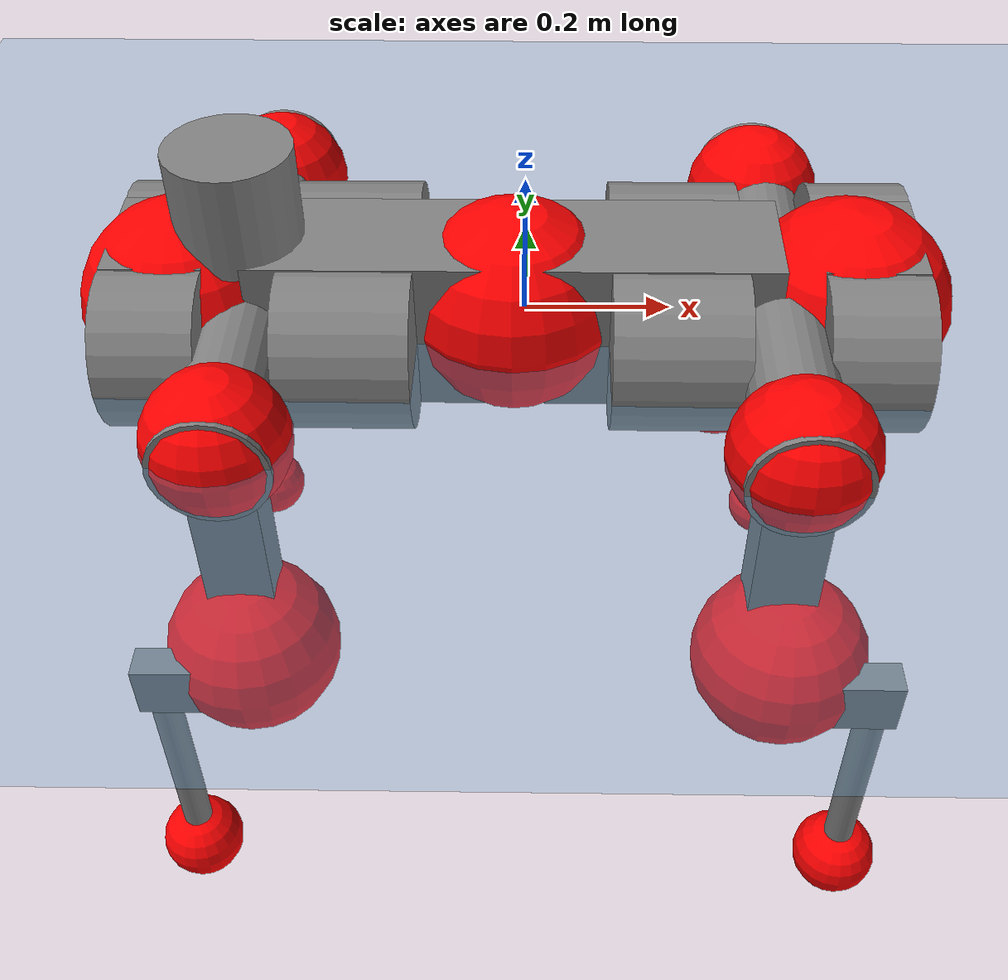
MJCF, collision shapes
<mujoco model="anymal_c">
  <compiler angle="radian" assetdir="assets" balanceinertia="true" inertiafromgeom="false"/>

  <option timestep="0.005" density="1.2" viscosity="2e-05"/>

  <size nkey="1"/>

  <visual>
    <quality shadowsize="8192"/>
    <map shadowclip="0.5"/>
  </visual>

  <default>
    <default class="/">
      <material specular="0" shininess="0.25"/>
      <geom contype="0" conaffinity="0" group="1" solref="-1000 -80"/>
      <site size="0.01 0.005 0.005" group="5"/>
      <general forcelimited="true" forcerange="-80 80" biastype="affine" gainprm="80" biasprm="0 -80 -2"/>
      <default class="anymal_c">
        <joint armature="0.01" damping="0.01" frictionloss="0.1"/>
        <default class="visual">
          <geom type="mesh" group="2"/>
          <default class="visual_zflip"/>
        </default>
        <default class="collision">
          <geom type="cylinder" group="3"/>
          <default class="foot">
            <geom size="0.03 0 0" type="sphere" condim="6" priority="1" friction="0.8 0.02 0.01" solimp="0.015 1 0.03"/>
          </default>
        </default>
      </default>
      <default class="reward_collision_sphere">
        <geom group="5" rgba="1 0 0 1"/>
      </default>
    </default>
  </default>

  <asset>
    <texture type="skybox" colorspace="auto" name="//unnamed_texture_0" builtin="gradient" rgb1="0.95 0.95 0.95" rgb2="0.95 0.95 0.95" width="100" height="600"/>
    <texture type="2d" colorspace="auto" name="texplane" builtin="checker" rgb1="0.345 0.575 0.748" rgb2="0.345 0.575 0.748" markrgb="1 1 1" width="512" height="512"/>
    <texture type="2d" colorspace="linear" name="base" file="base.png"/>
    <texture type="2d" colorspace="linear" name="top_shell" file="top_shell.png"/>
    <texture type="2d" colorspace="linear" name="bottom_shell" file="bottom_shell.png"/>
    <texture type="2d" colorspace="linear" name="remote" file="remote.png"/>
    <texture type="2d" colorspace="linear" name="hatch" file="hatch.png"/>
    <texture type="2d" colorspace="linear" name="handle" file="handle.png"/>
    <texture type="2d" colorspace="linear" name="face" file="face.png"/>
    <texture type="2d" colorspace="linear" name="battery" file="battery.png"/>
    <texture type="2d" colorspace="linear" name="lidar_cage" file="lidar_cage.png"/>
    <texture type="2d" colorspace="linear" name="depth_camera" file="depth_camera.png"/>
    <texture type="2d" colorspace="linear" name="wide_angle_camera" file="wide_angle_camera.png"/>
    <texture type="2d" colorspace="linear" name="lidar" file="lidar.png"/>
    <texture type="2d" colorspace="linear" name="drive" file="drive.png"/>
    <texture type="2d" colorspace="linear" name="hip_l" file="hip_l.png"/>
    <texture type="2d" colorspace="linear" name="shank_l" file="shank_l.png"/>
    <texture type="2d" colorspace="linear" name="foot" file="foot.png"/>
    <texture type="2d" colorspace="linear" name="thigh" file="thigh.png"/>
    <texture type="2d" colorspace="linear" name="shank_r" file="shank_r.png"/>
    <texture type="2d" colorspace="linear" name="hip_r" file="hip_r.png"/>
    <material name="MatPlane" class="/" texture="texplane" texuniform="true" texrepeat="2 2" specular="0.9" shininess="0.5"/>
    <material name="black_plastic" class="/" rgba="0.007 0.007 0.007 1"/>
    <material name="green" class="/" rgba="0.052 0.178 0.033 1"/>
    <material name="red" class="/" rgba="0.178 0.006 0.005 1"/>
    <material name="yellow" class="/" rgba="0.178 0.119 0.006 1"/>
    <material name="lwl" class="/" rgba="0.8 0.8 0.8 1"/>
    <material name="base" class="/" texture="base"/>
    <material name="top_shell" class="/" texture="top_shell"/>
    <material name="bottom_shell" class="/" texture="bottom_shell"/>
    <material name="hip_l" class="/" texture="hip_l"/>
    <material name="thigh" class="/" texture="thigh"/>
    <material name="shank_l" class="/" texture="shank_l"/>
    <material name="foot" class="/" texture="foot"/>
    <material name="hip_r" class="/" texture="hip_r"/>
    <material name="shank" class="/" texture="shank_r"/>
    <material name="hatch" class="/" texture="hatch"/>
    <material name="remote" class="/" texture="remote"/>
    <material name="handle" class="/" texture="handle"/>
    <material name="face" class="/" texture="face"/>
    <material name="depth_camera" class="/" texture="depth_camera"/>
    <material name="wide_angle_camera" class="/" texture="wide_angle_camera"/>
    <material name="battery" class="/" texture="battery"/>
    <material name="lidar_cage" class="/" texture="lidar_cage"/>
    <material name="lidar" class="/" texture="lidar"/>
    <material name="drive" class="/" texture="drive"/>
    <mesh name="base_0" class="/" file="base_0.obj"/>
    <mesh name="base_1" class="/" file="base_1.obj"/>
    <mesh name="base_2" class="/" file="base_2.obj"/>
    <mesh name="base_3" class="/" file="base_3.obj"/>
    <mesh name="base_4" class="/" file="base_4.obj"/>
    <mesh name="base_5" class="/" file="base_5.obj"/>
    <mesh name="top_shell" class="/" file="top_shell.obj"/>
    <mesh name="bottom_shell" class="/" file="bottom_shell.obj"/>
    <mesh name="remote" class="/" file="remote.obj"/>
    <mesh name="handle" class="/" file="handle.obj"/>
    <mesh name="face" class="/" file="face.obj"/>
    <mesh name="wide_angle_camera" class="/" file="wide_angle_camera.obj"/>
    <mesh name="depth_camera" class="/" file="depth_camera.obj"/>
    <mesh name="battery" class="/" file="battery.obj"/>
    <mesh name="lidar_cage" class="/" file="lidar_cage.obj"/>
    <mesh name="lidar" class="/" file="lidar.obj"/>
    <mesh name="drive" class="/" file="drive.obj"/>
    <mesh name="hip_l" class="/" file="hip_l.obj"/>
    <mesh name="thigh" class="/" file="thigh.obj"/>
    <mesh name="shank_l" class="/" file="shank_l.obj"/>
    <mesh name="foot" class="/" file="foot.obj"/>
    <mesh name="hip_r" class="/" file="hip_r.obj"/>
    <mesh name="hatch" class="/" file="hatch.obj"/>
    <mesh name="shank_r" class="/" file="shank_r.obj"/>
  </asset>

  <worldbody>
    <geom name="floor" class="/" size="100 100 0.125" type="plane" group="0" material="MatPlane"/>
    <light name="toplight_shadow" class="/" pos="0 0 5" dir="0.0990148 0.0990148 -0.990148" type="directional" ambient="0.04 0.04 0.04" diffuse="0.55 0.55 0.55" specular="0.12 0.12 0.12"/>
    <light name="toplight_fill" class="/" pos="0 0 5" dir="0.0990148 0.0990148 -0.990148" type="directional" castshadow="false" ambient="0.04 0.04 0.04" diffuse="0.3 0.3 0.3" specular="0.08 0.08 0.08"/>
    <body name="trunk" childclass="anymal_c" pos="-0.0144599 0.000401598 0.00678331" quat="0.999979 0.000718257 -0.00441968 -0.00471576">
      <inertial pos="0.0162549 -0.00647865 0.0643592" quat="0.508457 0.492186 0.502823 0.496381" mass="38.9633" diaginertia="0.60898 3.46032 0.556828"/>
      <joint name="//unnamed_joint_0" type="free" armature="0" damping="0" frictionloss="0"/>
      <geom name="//unnamed_geom_1" class="visual" material="green" mesh="base_0"/>
      <geom name="//unnamed_geom_2" class="visual" material="yellow" mesh="base_1"/>
      <geom name="//unnamed_geom_3" class="visual" material="red" mesh="base_2"/>
      <geom name="//unnamed_geom_4" class="visual" material="black_plastic" mesh="base_3"/>
      <geom name="//unnamed_geom_5" class="visual" material="lwl" mesh="base_4"/>
      <geom name="//unnamed_geom_6" class="visual" material="base" mesh="base_5"/>
      <geom name="trunk_1" class="collision" size="0.35619 0.0859768 0.110542" type="box"/>
      <geom name="trunk_2" class="collision" size="0.110542 0.0890474" pos="0.218642 0.100563 0" quat="0.707107 0 0.707107 0"/>
      <geom name="trunk_3" class="collision" size="0.110542 0.0890474" pos="-0.218642 0.100563 0" quat="0.707107 0 0.707107 0"/>
      <geom name="trunk_4" class="collision" size="0.110542 0.0890474" pos="0.218642 -0.100563 0" quat="0.707107 0 0.707107 0"/>
      <geom name="trunk_5" class="collision" size="0.110542 0.0890474" pos="-0.218642 -0.100563 0" quat="0.707107 0 0.707107 0"/>
      <geom name="//unnamed_geom_12" class="visual" material="top_shell" mesh="top_shell"/>
      <geom name="//unnamed_geom_13" class="visual" material="bottom_shell" mesh="bottom_shell"/>
      <geom name="//unnamed_geom_14" class="visual" material="remote" mesh="remote"/>
      <geom name="//unnamed_geom_15" class="visual" material="handle" mesh="handle"/>
      <geom name="//unnamed_geom_16" class="visual" pos="0.416677 0 0" quat="1 0 0 0" material="face" mesh="face"/>
      <geom name="trunk_6" class="collision" size="0.0675532 0.0859768 0.110542" pos="0.471966 0 0" type="box"/>
      <geom name="//unnamed_geom_18" class="collision" size="0.110542 0.0675532" pos="0.471966 0.100563 0" quat="0.707107 0 0.707107 0"/>
      <geom name="//unnamed_geom_19" class="collision" size="0.110542 0.0675532" pos="0.471966 -0.100563 0" quat="0.707107 0 0.707107 0"/>
      <geom name="//unnamed_geom_20" class="visual" pos="0.464085 0 -0.038097" quat="0.965926 0 0.258819 0" material="depth_camera" mesh="depth_camera"/>
      <geom name="//unnamed_geom_21" class="visual" pos="0.515695 0 0.0186055" material="wide_angle_camera" mesh="wide_angle_camera"/>
      <geom name="//unnamed_geom_22" class="visual_zflip" pos="-0.416677 0 0" quat="0 0 0 1" material="face" mesh="face"/>
      <geom name="trunk_7" class="collision" size="0.0675532 0.0859768 0.110542" pos="-0.471966 0 0" quat="0 0 0 1" type="box"/>
      <geom name="//unnamed_geom_24" class="collision" size="0.110542 0.0675532" pos="-0.471966 -0.100563 0" quat="0 -0.707107 0 0.707107"/>
      <geom name="//unnamed_geom_25" class="collision" size="0.110542 0.0675532" pos="-0.471966 0.100563 0" quat="0 -0.707107 0 0.707107"/>
      <geom name="//unnamed_geom_26" class="visual" pos="-0.464085 0 -0.038097" quat="0 -0.258819 0 0.965926" material="depth_camera" mesh="depth_camera"/>
      <geom name="//unnamed_geom_27" class="visual_zflip" pos="-0.515695 0 0.0186055" quat="0 0 0 1" material="wide_angle_camera" mesh="wide_angle_camera"/>
      <geom name="//unnamed_geom_28" class="visual" material="battery" mesh="battery"/>
      <geom name="//unnamed_geom_29" class="visual" pos="0 0.115514 0.0342991" quat="0.683013 -0.183013 0.183013 0.683013" material="depth_camera" mesh="depth_camera"/>
      <geom name="//unnamed_geom_30" class="visual" pos="0 -0.115514 0.0342991" quat="0.683013 0.183013 0.183013 -0.683013" material="depth_camera" mesh="depth_camera"/>
      <geom name="//unnamed_geom_31" class="visual" pos="-0.365912 0 0.0913496" quat="1 0 0 0" material="lidar_cage" mesh="lidar_cage"/>
      <geom name="trunk_8" class="collision" size="0.0859768 0.0736944" pos="-0.365912 0 0.165921"/>
      <geom name="//unnamed_geom_33" class="visual" pos="-0.365912 0.000169471 0.176733" quat="0.707107 0 0 -0.707107" material="lidar" mesh="lidar"/>
      <geom name="//unnamed_geom_34" class="visual" pos="0.301475 0.149339 3.34245e-09" quat="0.258819 0.965926 0 0" material="drive" mesh="drive"/>
      <geom name="//unnamed_geom_35" class="visual" pos="0.301475 -0.149339 -3.34245e-09" quat="0.258819 -0.965926 0 0" material="drive" mesh="drive"/>
      <geom name="//unnamed_geom_36" class="visual" pos="-0.301475 0.149339 -3.34245e-09" quat="0 0 0.965926 -0.258819" material="drive" mesh="drive"/>
      <geom name="//unnamed_geom_37" class="visual" pos="-0.301475 -0.149339 3.34245e-09" quat="0 0 -0.965926 -0.258819" material="drive" mesh="drive"/>
      <geom name="//unnamed_geom_38" class="visual" pos="0.116609 0 0.0907281" quat="1 0 0 0" material="hatch" mesh="hatch"/>
      <geom name="//unnamed_geom_39" class="reward_collision_sphere" size="0.147389"/>
      <geom name="//unnamed_geom_40" class="reward_collision_sphere" size="0.147389" pos="0.452364 0 0"/>
      <geom name="//unnamed_geom_41" class="reward_collision_sphere" size="0.147389" pos="-0.452364 0 0"/>
      <site name="imu" pos="0.253339 -0.026505 -0.00528399" size="0.0122824"/>
      <camera name="track" pos="0 -2.87323 0" quat="0.707107 0.707107 0 0" mode="trackcom"/>
      <camera name="ego_camera" pos="0.452364 0 -0.049714" quat="-0.5 -0.5 0.5 0.5"/>
      <body name="LF_HIP" pos="0.302467 0.153587 -0.0060294" quat="0.257394 0.966302 -0.00153591 -0.00249334">
        <inertial pos="0.053873 -0.0119606 -0.00865598" quat="-0.123734 0.711428 -0.136802 0.678119" mass="5.3716" diaginertia="0.00472732 0.0262667 0.00970833"/>
        <joint name="LF_HAA" pos="0 0 0" axis="0.997474 -0.0176394 0.0688024" stiffness="0.0269983" range="-0.999243 0.51425" armature="0.013268" damping="0" frictionloss="0.130186"/>
        <geom name="//unnamed_geom_42" class="visual" pos="0 0.000196621 -3.22949e-05" quat="0.258819 -0.965926 0 0" material="hip_l" mesh="hip_l"/>
        <geom name="//unnamed_geom_43" class="visual" pos="0.0602146 -0.0785736 -0.0439313" quat="0.183013 -0.683013 0.683013 0.183013" material="drive" mesh="drive"/>
        <geom name="//unnamed_geom_44" class="collision" size="0.061412 0.0859768" pos="0.0602146 -0.0171816 -0.00858189" quat="-0.353553 -0.612372 0.612372 -0.353553"/>
        <body name="LF_THIGH" pos="0.0531023 -0.105282 -0.0599586" quat="0.182576 -0.680012 0.686929 0.179937">
          <inertial pos="0.0212003 0.00892174 -0.292533" quat="0.993075 -0.00432012 -0.0818783 0.0841382" mass="6.41374" diaginertia="0.0318566 0.204543 0.011362"/>
          <joint name="LF_HFE" pos="0 0 0" axis="0.999693 0.0233873 -0.0081819" stiffness="0.07352" range="-3.26981 3.1244" armature="0.0162147" damping="0.0147145" frictionloss="0.154113"/>
          <geom name="//unnamed_geom_45" class="visual" pos="-0.00858242 -1.35239e-05 0" quat="0.707107 0 0 -0.707107" material="thigh" mesh="thigh"/>
          <geom name="//unnamed_geom_46" class="collision" size="0.0798356 0.0491296" pos="0.0402101 0 0" quat="0.5 0.5 -0.5 -0.5"/>
          <geom name="//unnamed_geom_47" class="collision" size="0.046059 0.0368472 0.173567" pos="0.0301576 0 -0.175632" quat="0.707107 0 0 -0.707107" type="box"/>
          <geom name="//unnamed_geom_48" class="visual" pos="0.100827 0 -0.354213" quat="1 0 0 0" material="drive" mesh="drive"/>
          <geom name="//unnamed_geom_49" class="collision" size="0.061412 0.0859768" pos="0.0304592 0 -0.354213" quat="0.707107 0 0.707107 0"/>
          <geom name="//unnamed_geom_50" class="reward_collision_sphere" size="0.0982592" pos="0.0251313 0 0"/>
          <body name="LF_SHANK" pos="0.0995536 0.0129534 -0.355979" quat="0.999991 -0.00279528 0.00109124 -0.00311637">
            <inertial pos="0.0166872 -0.0892319 -0.109475" quat="0.994276 -0.104647 -0.020131 -0.00769937" mass="1.0503" diaginertia="0.0093778 0.0409529 0.00255607"/>
            <joint name="LF_KFE" pos="0 0 0" axis="0.999674 0.00956151 -0.0236708" range="-2.88344 3.1375" armature="0.00816195" damping="0.0675534" frictionloss="0.0771692"/>
            <geom name="//unnamed_geom_51" class="visual" pos="-0.00279854 -0.014922 0" quat="0.707107 0 0 -0.707107" material="shank_l" mesh="shank_l"/>
            <geom name="LF_kfe_act" class="collision" size="0.0736944 0.0245648" pos="0.0201051 0 0" quat="0.5 0.5 -0.5 -0.5"/>
            <geom name="//unnamed_geom_53" class="collision" size="0.0706226 0.0414531 0.0233366" pos="0.0201051 -0.0826039 0" quat="0.5 0.5 -0.5 -0.5" type="box"/>
            <geom name="//unnamed_geom_54" class="visual" pos="0.0131192 -0.131159 -0.420046" quat="0.382683 0 0 -0.92388" material="foot" mesh="foot"/>
            <geom name="LF_calf" class="collision" size="0.0214942 0.173491" pos="0.0131185 -0.12635 -0.210023" quat="0.707107 0 0 -0.707107"/>
            <geom name="LF_foot" class="foot" size="0.0252745" pos="0.0131185 -0.12635 -0.392082" quat="0.707107 0 0 -0.707107"/>
            <geom name="//unnamed_geom_57" class="reward_collision_sphere" size="0.122824" pos="-0.0502626 0 0"/>
            <geom name="//unnamed_geom_58" class="reward_collision_sphere" size="0.061412" pos="0.0131185 -0.12635 -0.392082"/>
            <site name="LF_foot" class="foot" pos="0.0131185 -0.12635 -0.392082" quat="0.707107 0 0 -0.707107" size="0.0122824"/>
          </body>
        </body>
      </body>
      <body name="RF_HIP" pos="0.299949 -0.153728 0.0131092" quat="0.257636 -0.966228 -0.00135136 0.00495036">
        <inertial pos="0.0497044 0.0341271 -0.0116969" quat="0.112297 0.685418 0.0764418 0.715365" mass="5.20518" diaginertia="0.00745625 0.0332389 0.0119199"/>
        <joint name="RF_HAA" pos="0 0 0" axis="0.999286 -0.00352802 -0.0376282" stiffness="0.0174653" range="-0.589436 0.736761" armature="0.00986489" damping="0.00518854" frictionloss="0.19416"/>
        <geom name="//unnamed_geom_59" class="visual" pos="0 -0.00019662 -3.22948e-05" quat="0.258819 0.965926 0 0" material="hip_r" mesh="hip_r"/>
        <geom name="//unnamed_geom_60" class="visual" pos="0.0602147 0.0785736 -0.0439313" quat="0.183013 0.683013 0.683013 -0.183013" material="drive" mesh="drive"/>
        <geom name="//unnamed_geom_61" class="collision" size="0.061412 0.0859768" pos="0.0602146 0.0171816 -0.00858189" quat="-0.353553 0.612372 0.612372 0.353553"/>
        <body name="RF_THIGH" pos="0.061757 0.118535 -0.0535299" quat="0.182815 0.682918 0.683151 -0.183047">
          <inertial pos="0.0231459 0.0104699 -0.30447" quat="0.988232 -0.0385117 -0.107535 0.101736" mass="5.51609" diaginertia="0.0340919 0.21062 0.0115679"/>
          <joint name="RF_HFE" pos="0 0 0" axis="0.999994 0.00329828 -0.000502299" stiffness="0.0401011" range="-3.11106 2.92014" armature="0.0119732" damping="0.0241349" frictionloss="0.0836613"/>
          <geom name="//unnamed_geom_62" class="visual" pos="-0.00858242 -1.35239e-05 0" quat="0.707107 0 0 -0.707107" material="thigh" mesh="thigh"/>
          <geom name="//unnamed_geom_63" class="collision" size="0.0798356 0.0491296" pos="0.0402101 0 0" quat="0.5 0.5 0.5 0.5"/>
          <geom name="//unnamed_geom_64" class="collision" size="0.046059 0.0368472 0.173567" pos="0.0301576 0 -0.175632" quat="0.707107 0 0 0.707107" type="box"/>
          <geom name="//unnamed_geom_65" class="visual" pos="0.100827 0 -0.354213" quat="1 0 0 0" material="drive" mesh="drive"/>
          <geom name="//unnamed_geom_66" class="collision" size="0.061412 0.0859768" pos="0.0304592 0 -0.354213" quat="0.707107 0 0.707107 0"/>
          <geom name="//unnamed_geom_67" class="reward_collision_sphere" size="0.0982592" pos="0.0251313 0 0"/>
          <body name="RF_SHANK" pos="0.102493 0.0109076 -0.34944" quat="1 -0.000113556 0.000226966 5.50204e-05">
            <inertial pos="0.00434042 0.08777 -0.0993754" quat="0.99314 0.110289 -0.0204646 -0.033017" mass="1.09524" diaginertia="0.0103798 0.0571774 0.003754"/>
            <joint name="RF_KFE" pos="0 0 0" axis="0.997736 0.0086109 -0.0667" stiffness="0.0590359" range="-3.13909 2.94609" armature="0.0154056" damping="0" frictionloss="0.158659"/>
            <geom name="//unnamed_geom_68" class="visual" pos="-0.00279852 0.0149219 0" quat="0.707107 0 0 0.707107" material="shank" mesh="shank_r"/>
            <geom name="RF_kfe_act" class="collision" size="0.0736944 0.0245648" pos="0.0201051 0 0" quat="0.5 0.5 0.5 0.5"/>
            <geom name="//unnamed_geom_70" class="collision" size="0.0706226 0.0414531 0.0233366" pos="0.0201051 0.0826039 0" quat="0.5 0.5 0.5 0.5" type="box"/>
            <geom name="//unnamed_geom_71" class="visual" pos="0.0131179 0.131159 -0.420046" quat="0.382683 0 0 0.92388" material="foot" mesh="foot"/>
            <geom name="RF_calf" class="collision" size="0.0214942 0.173491" pos="0.0131185 0.12635 -0.210023" quat="0.707107 0 0 0.707107"/>
            <geom name="RF_foot" class="foot" size="0.0426351" pos="0.0131185 0.12635 -0.392082" quat="0.707107 0 0 0.707107"/>
            <geom name="//unnamed_geom_74" class="reward_collision_sphere" size="0.122824" pos="-0.0502626 0 0"/>
            <geom name="//unnamed_geom_75" class="reward_collision_sphere" size="0.061412" pos="0.0131185 0.12635 -0.392082"/>
            <site name="RF_foot" class="foot" pos="0.0131185 0.12635 -0.392082" quat="0.707107 0 0 0.707107" size="0.0122824"/>
          </body>
        </body>
      </body>
      <body name="LH_HIP" pos="-0.302216 0.150509 0.0101583" quat="-5.27681e-05 0.00032561 0.965954 -0.258714">
        <inertial pos="0.0515668 0.00845818 -0.000221857" quat="0.0811753 0.650466 0.158847 0.73829" mass="4.13676" diaginertia="0.00573335 0.028762 0.00790575"/>
        <joint name="LH_HAA" pos="0 0 0" axis="0.999994 0.000848742 -0.00327722" range="-0.456992 0.885525" armature="0.0185943" damping="0.0259472" frictionloss="0.0470931"/>
        <geom name="//unnamed_geom_76" class="visual" pos="0 -0.00019662 -3.22948e-05" quat="-0.258819 -0.965926 0 0" material="hip_r" mesh="hip_r"/>
        <geom name="//unnamed_geom_77" class="visual" pos="0.0602147 0.0785736 -0.0439313" quat="0.183013 0.683013 0.683013 -0.183013" material="drive" mesh="drive"/>
        <geom name="//unnamed_geom_78" class="collision" size="0.061412 0.0859768" pos="0.0602146 0.0171816 -0.00858189" quat="-0.353553 0.612372 0.612372 0.353553"/>
        <body name="LH_THIGH" pos="0.0607725 0.116226 -0.0643596" quat="0.182697 0.682587 0.683542 -0.182942">
          <inertial pos="0.0316892 -0.0011427 -0.30762" quat="0.992497 -0.0181904 -0.0633489 0.102988" mass="4.48865" diaginertia="0.0295742 0.169039 0.0104618"/>
          <joint name="LH_HFE" pos="0 0 0" axis="0.999115 -0.00248883 -0.0419973" range="-3.14457 3.13215" armature="0.00640501" damping="0.0497781" frictionloss="0.124041"/>
          <geom name="//unnamed_geom_79" class="visual" pos="-0.00858242 -1.35239e-05 0" quat="0.707107 0 0 -0.707107" material="thigh" mesh="thigh"/>
          <geom name="//unnamed_geom_80" class="collision" size="0.0798356 0.0491296" pos="0.0402101 0 0" quat="0.5 0.5 -0.5 -0.5"/>
          <geom name="//unnamed_geom_81" class="collision" size="0.046059 0.0368472 0.173567" pos="0.0301576 0 -0.175632" quat="0.707107 0 0 -0.707107" type="box"/>
          <geom name="//unnamed_geom_82" class="visual" pos="0.100827 0 -0.354213" quat="1 0 0 0" material="drive" mesh="drive"/>
          <geom name="//unnamed_geom_83" class="collision" size="0.061412 0.0859768" pos="0.0304592 0 -0.354213" quat="0.707107 0 0.707107 0"/>
          <geom name="//unnamed_geom_84" class="reward_collision_sphere" size="0.0982592" pos="0.0251313 0 0"/>
          <body name="LH_SHANK" pos="0.10204 -0.000250377 -0.341155" quat="0.999999 -0.000456534 0.00129451 -0.000446905">
            <inertial pos="0.010624 0.0739714 -0.100633" quat="0.989041 0.137171 -0.0153013 0.0524142" mass="1.02836" diaginertia="0.01074 0.052997 0.0036688"/>
            <joint name="LH_KFE" pos="0 0 0" axis="0.999935 -0.0114407 -0.000126141" stiffness="0.0724952" range="-3.16921 3.01073" armature="0.00783272" damping="0.0498732" frictionloss="0.0385"/>
            <geom name="//unnamed_geom_85" class="visual" pos="-0.00279852 0.0149219 0" quat="-0.707107 0 0 -0.707107" material="shank" mesh="shank_r"/>
            <geom name="LH_kfe_act" class="collision" size="0.0736944 0.0245648" pos="0.0201051 0 0" quat="0.5 0.5 -0.5 -0.5"/>
            <geom name="//unnamed_geom_87" class="collision" size="0.0706226 0.0414531 0.0233366" pos="0.0201051 0.0826039 0" quat="0.5 0.5 -0.5 -0.5" type="box"/>
            <geom name="//unnamed_geom_88" class="visual" pos="0.0131179 0.131159 -0.420046" quat="-0.382683 0 0 -0.92388" material="foot" mesh="foot"/>
            <geom name="LH_calf" class="collision" size="0.0214942 0.173491" pos="0.0131185 0.12635 -0.210023" quat="0.707107 0 0 -0.707107"/>
            <geom name="LH_foot" class="foot" size="0.0466741" pos="0.0131185 0.12635 -0.392082" quat="0.707107 0 0 -0.707107"/>
            <geom name="//unnamed_geom_91" class="reward_collision_sphere" size="0.122824" pos="-0.0502626 0 0"/>
            <geom name="//unnamed_geom_92" class="reward_collision_sphere" size="0.061412" pos="0.0131185 0.12635 -0.392082"/>
            <site name="LH_foot" class="foot" pos="0.0131185 0.12635 -0.392082" quat="0.707107 0 0 -0.707107" size="0.0122824"/>
          </body>
        </body>
      </body>
      <body name="RH_HIP" pos="-0.306525 -0.142077 0.00257676" quat="-0.00123069 0.00444094 -0.967178 -0.254059">
        <inertial pos="0.0431399 -0.0321008 0.00340277" quat="-0.0949375 0.718205 -0.167159 0.668749" mass="5.26505" diaginertia="0.00603923 0.0304004 0.00999821"/>
        <joint name="RH_HAA" pos="0 0 0" axis="0.997486 -0.0605602 -0.0368042" range="-0.823727 0.451071" armature="0.0168037" damping="0.0215579" frictionloss="0.106983"/>
        <geom name="//unnamed_geom_93" class="visual" pos="0 0.000196621 -3.22949e-05" quat="-0.258819 0.965926 0 0" material="hip_l" mesh="hip_l"/>
        <geom name="//unnamed_geom_94" class="visual" pos="0.0602146 -0.0785736 -0.0439313" quat="-0.183013 0.683013 -0.683013 -0.183013" material="drive" mesh="drive"/>
        <geom name="//unnamed_geom_95" class="collision" size="0.061412 0.0859768" pos="0.0602146 -0.0171816 -0.00858189" quat="0.353553 0.612372 -0.612372 0.353553"/>
        <body name="RH_THIGH" pos="0.0640044 -0.102927 -0.0382051" quat="-0.183854 0.682924 -0.683044 -0.182383">
          <inertial pos="0.0324854 0.00108472 -0.305494" quat="0.992599 -0.00430289 -0.082585 0.0889283" mass="6.55821" diaginertia="0.0320741 0.163162 0.012673"/>
          <joint name="RH_HFE" pos="0 0 0" axis="0.999909 0.0132349 -0.0026109" range="-3.12524 2.90457" armature="0.0129506" damping="0.0124583" frictionloss="0.106613"/>
          <geom name="//unnamed_geom_96" class="visual" pos="-0.00858242 -1.35239e-05 0" quat="0.707107 0 0 -0.707107" material="thigh" mesh="thigh"/>
          <geom name="//unnamed_geom_97" class="collision" size="0.0798356 0.0491296" pos="0.0402101 0 0" quat="0.5 0.5 0.5 0.5"/>
          <geom name="//unnamed_geom_98" class="collision" size="0.046059 0.0368472 0.173567" pos="0.0301576 0 -0.175632" quat="0.707107 0 0 0.707107" type="box"/>
          <geom name="//unnamed_geom_99" class="visual" pos="0.100827 0 -0.354213" quat="1 0 0 0" material="drive" mesh="drive"/>
          <geom name="//unnamed_geom_100" class="collision" size="0.061412 0.0859768" pos="0.0304592 0 -0.354213" quat="0.707107 0 0.707107 0"/>
          <geom name="//unnamed_geom_101" class="reward_collision_sphere" size="0.0982592" pos="0.0251313 0 0"/>
          <body name="RH_SHANK" pos="0.0987366 0.000749463 -0.361108" quat="1 -0.000152029 -5.48417e-05 0.000195428">
            <inertial pos="0.0154476 -0.0893814 -0.101167" quat="0.992321 -0.107944 0.018279 -0.0575599" mass="1.07923" diaginertia="0.00956749 0.0560993 0.00281169"/>
            <joint name="RH_KFE" pos="0 0 0" axis="0.998033 0.0626451 0.00224976" range="-3.03527 3.11744" armature="0.0146901" damping="0" frictionloss="0.146692"/>
            <geom name="//unnamed_geom_102" class="visual" pos="-0.00279854 -0.014922 0" quat="0.707107 0 0 -0.707107" material="shank_l" mesh="shank_l"/>
            <geom name="RH_kfe_act" class="collision" size="0.0736944 0.0245648" pos="0.0201051 0 0" quat="0.5 0.5 0.5 0.5"/>
            <geom name="//unnamed_geom_104" class="collision" size="0.0706226 0.0414531 0.0233366" pos="0.0201051 -0.0826039 0" quat="0.5 0.5 0.5 0.5" type="box"/>
            <geom name="//unnamed_geom_105" class="visual" pos="0.0131192 -0.131159 -0.420046" quat="0.382683 0 0 -0.92388" material="foot" mesh="foot"/>
            <geom name="RH_calf" class="collision" size="0.0214942 0.173491" pos="0.0131185 -0.12635 -0.210023" quat="0.707107 0 0 0.707107"/>
            <geom name="RH_foot" class="foot" size="0.05294" pos="0.0131185 -0.12635 -0.392082" quat="0.707107 0 0 0.707107"/>
            <geom name="//unnamed_geom_108" class="reward_collision_sphere" size="0.122824" pos="-0.0502626 0 0"/>
            <geom name="//unnamed_geom_109" class="reward_collision_sphere" size="0.061412" pos="0.0131185 -0.12635 -0.392082"/>
            <site name="RH_foot" class="foot" pos="0.0131185 -0.12635 -0.392082" quat="0.707107 0 0 0.707107" size="0.0122824"/>
          </body>
        </body>
      </body>
    </body>
  </worldbody>

  <contact>
    <pair class="/" geom1="floor" geom2="LF_foot" name="//unnamed_contact_0"/>
    <pair class="/" geom1="floor" geom2="RF_foot" name="//unnamed_contact_1"/>
    <pair class="/" geom1="floor" geom2="LH_foot" name="//unnamed_contact_2"/>
    <pair class="/" geom1="floor" geom2="RH_foot" name="//unnamed_contact_3"/>
  </contact>

  <actuator>
    <general name="LF_HAA" class="/" joint="LF_HAA" forcerange="-102.076 102.076" gainprm="78.6435" biasprm="0 -78.6435 -3.04624"/>
    <general name="LF_HFE" class="/" joint="LF_HFE" forcerange="-125.991 125.991" gainprm="78.6435" biasprm="0 -78.6435 -3.04624"/>
    <general name="LF_KFE" class="/" joint="LF_KFE" forcerange="-103.925 103.925" gainprm="78.6435" biasprm="0 -78.6435 -3.04624"/>
    <general name="RF_HAA" class="/" joint="RF_HAA" forcerange="-98.3872 98.3872" gainprm="78.6435" biasprm="0 -78.6435 -3.04624"/>
    <general name="RF_HFE" class="/" joint="RF_HFE" forcerange="-71.0459 71.0459" gainprm="78.6435" biasprm="0 -78.6435 -3.04624"/>
    <general name="RF_KFE" class="/" joint="RF_KFE" forcerange="-95.5459 95.5459" gainprm="78.6435" biasprm="0 -78.6435 -3.04624"/>
    <general name="LH_HAA" class="/" joint="LH_HAA" forcerange="-48.7382 48.7382" gainprm="78.6435" biasprm="0 -78.6435 -3.04624"/>
    <general name="LH_HFE" class="/" joint="LH_HFE" forcerange="-124.575 124.575" gainprm="78.6435" biasprm="0 -78.6435 -3.04624"/>
    <general name="LH_KFE" class="/" joint="LH_KFE" forcerange="-147.792 147.792" gainprm="78.6435" biasprm="0 -78.6435 -3.04624"/>
    <general name="RH_HAA" class="/" joint="RH_HAA" forcerange="-132.232 132.232" gainprm="78.6435" biasprm="0 -78.6435 -3.04624"/>
    <general name="RH_HFE" class="/" joint="RH_HFE" forcerange="-50.3742 50.3742" gainprm="78.6435" biasprm="0 -78.6435 -3.04624"/>
    <general name="RH_KFE" class="/" joint="RH_KFE" forcerange="-92.3579 92.3579" gainprm="78.6435" biasprm="0 -78.6435 -3.04624"/>
  </actuator>

  <sensor>
    <gyro site="imu" name="imu_angular_velocity"/>
    <velocimeter site="imu" name="imu_linear_velocity"/>
    <framelinvel objtype="site" objname="LF_foot" name="LF_foot_global_linear_velocity"/>
    <framelinvel objtype="site" objname="RF_foot" name="RF_foot_global_linear_velocity"/>
    <framelinvel objtype="site" objname="LH_foot" name="LH_foot_global_linear_velocity"/>
    <framelinvel objtype="site" objname="RH_foot" name="RH_foot_global_linear_velocity"/>
  </sensor>

  <keyframe>
    <key name="home" qpos="0 0 0.55 1 0 0 0 0 0.4 -0.8 0 -0.4 0.8 0 -0.4 0.8 0 0.4 -0.8"/>
  </keyframe>
</mujoco>
